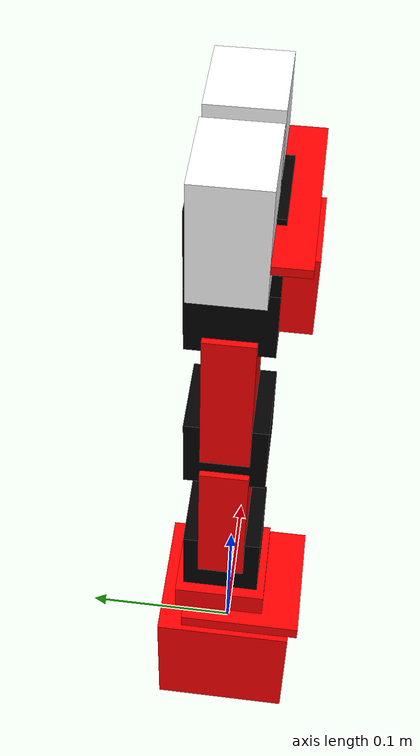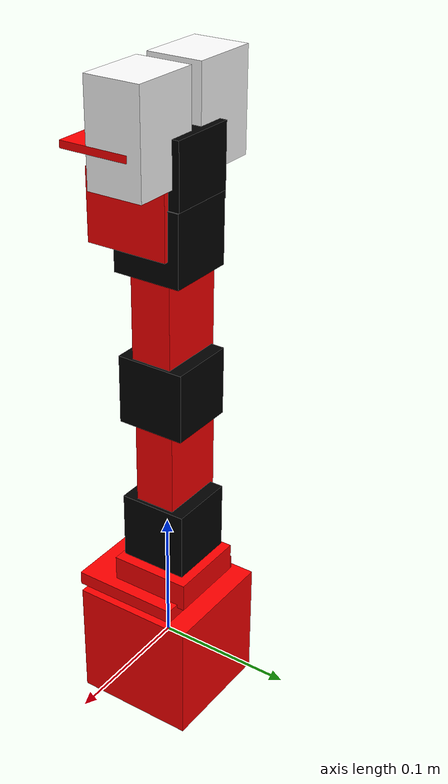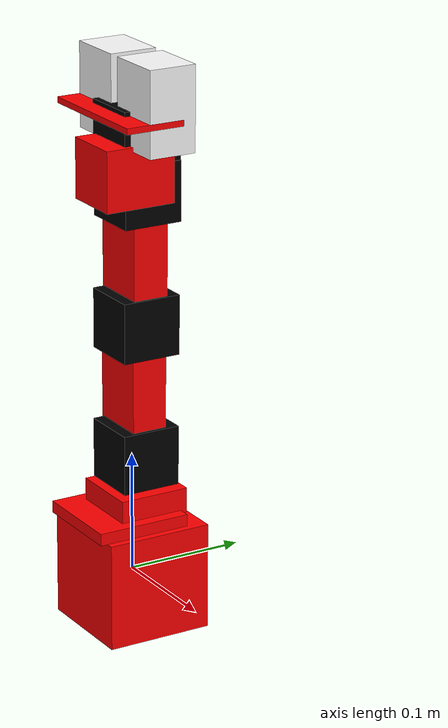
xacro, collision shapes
<?xml version="1.0"?>
<robot xmlns:xacro="http://www.ros.org/wiki/xacro" name="arm">

  <material name="red">
    <color rgba="1 0 0 1"/>
  </material>

  <!-- Material Black for Dynamixel motor -->
  <material name="black">
      <color rgba="0 0 0 1"/>
  </material>

  <link name="base_link">
    <visual>
      <geometry>
        <mesh filename="file://$(find armando_description)/meshes/base_link.stl" scale="0.001 0.001 0.001"/>
      </geometry>
      <origin rpy="0 0 0" xyz="0 0 0"/>
      <material name="red"/>
    </visual>
    <collision>
      <geometry>
        <box size="0.09 0.09 0.09"/>
      </geometry>
      <origin rpy="0 0 0" xyz="0 0 0"/>
    </collision>
    <inertial>
      <mass value="0.1"/>
      <inertia ixx="1.06682889e+08" ixy="0.0" ixz="0.0" iyy="9.92165844e+07" iyz="0.0" izz="1.26939175e+08"/>
    </inertial>
  </link>

  <joint name="base_1_2" type="fixed">
    <parent link="base_link"/>
    <child link="base_turn"/>
    <origin xyz="-0.0011 -0.011 0.05"/>
  </joint>

  <link name="base_turn">
    <visual>
      <geometry>
        <mesh filename="file://$(find armando_description)/meshes/base_turn.stl" scale="0.001 0.001 0.001"/>
      </geometry>
      <origin rpy="0 0 0" xyz="0 0 0"/>
      <material name="red"/>
    </visual>
    <collision>
      <geometry>
          <box size="0.08 0.08 0.01"/>
        </geometry>
      <origin rpy="0 0 0" xyz="0 0 0"/>
    </collision>
    <inertial>
      <mass value="0.1"/>
      <inertia ixx="1.35223008e+07" ixy="0.0" ixz="0.0" iyy="8.13814925e+06" iyz="0.0" izz="2.14903814e+07"/>
    </inertial>
  </link>

  <joint name="j0" type="revolute">
    <parent link="base_turn"/>
    <child link="base_turn_rot"/>
    <origin xyz="-0.0 0.0155 0.013" rpy = "0 0 -1.57"/>
    <axis xyz="0 0 1" />
    <limit effort="300" velocity="0.1" lower="-2.57" upper="2.57"/>
  </joint>

  <link name="base_turn_rot">
    <visual>
      <geometry>
        <mesh filename="file://$(find armando_description)/meshes/base_turn_table_rot.stl" scale="0.001 0.001 0.001"/>
      </geometry>
      <material name="red"/>
    </visual>
    <collision>
      <geometry>
          <box size="0.06 0.06 0.021"/>
        </geometry>
      <origin rpy="0 0 0" xyz="0 0 0"/>
    </collision>

    <inertial>
      <mass value="0.1"/>
      <inertia ixx="0.001" ixy="0.0" ixz="0.0" iyy="0.001" iyz="0.0" izz="0.001"/>
    </inertial>
  </link>

  <joint name="base_turn_rot_dyn2" type="fixed">
    <parent link="base_turn_rot"/>
    <child link="dyn2"/>
    <origin xyz="0 0 0.0385" rpy="0 1.57 1.57 "/>
  </joint>

  <link name="dyn2">
    <visual>
      <geometry>
        <mesh filename="file://$(find armando_description)/meshes/dyn.stl" scale="0.01 0.01 0.01"/>
      </geometry>
      <origin rpy="0 0 0" xyz="0 0 0"/>
      <material name="black"/>
    </visual>
    <collision>
      <geometry>
          <box size="0.05 0.05 0.05"/>
        </geometry>
      <origin rpy="0 0 0" xyz="0 0 0"/>
    </collision>
     <inertial>
      <mass value="0.1"/>
      <inertia ixx="6.90013881e-05" ixy="0.0" ixz="0.0" iyy="1.24554875e-04" iyz="0.0" izz="1.04295793e-04"/>
    </inertial>
  </link>

  <joint name="j1" type="revolute">
    <parent link="dyn2"/>
    <child link="dyn2_r"/>
    <origin xyz="0 0 0.0" rpy="0 0 0"/>
    <axis xyz="0 0 1" />
    <limit effort="300" velocity="0.1" lower="-3.14" upper="3.14"/>
  </joint>

  <link name="dyn2_r">

  </link>

  <joint name="dyn2_f4" type="fixed">
    <parent link="dyn2_r"/>
    <child link="f4"/>
    <origin xyz="-0.047 0.0 -0.003" rpy="0 1.57 1.57"/>
  </joint>

  <link name="f4">
    <visual>
      <geometry>
        <mesh filename="file://$(find armando_description)/meshes/f4_n_f3.stl" scale="0.001 0.001 0.001"/>
      </geometry>
      <origin rpy="0 0 0" xyz="0 0 0"/>
      <material name="red"/>
    </visual>
    <collision>
      <geometry>
          <box size="0.05 0.1 0.03"/>
        </geometry>
      <origin rpy="0 0 0" xyz="0 0 0"/>
    </collision>
     <inertial>
      <mass value="0.1"/>
      <inertia ixx="6.90013881e-05" ixy="0.0" ixz="0.0" iyy="1.24554875e-04" iyz="0.0" izz="1.04295793e-04"/>
    </inertial>
  </link>

  <joint name="d4_dyn3" type="fixed">
    <parent link="f4"/>
    <child link="dyn3"/>
    <origin xyz="-0.004 0.0645 0 " rpy="-1.57 3.14 1.57"/>
  </joint>

  <link name="dyn3">
    <visual>
      <geometry>
        <mesh filename="file://$(find armando_description)/meshes/dyn.stl" scale="0.01 0.01 0.01"/>
      </geometry>
      <origin rpy="0 0 0" xyz="0 0 0"/>
      <material name="black"/>
    </visual>
    <collision>
      <geometry>
          <box size="0.05 0.05 0.05"/>
        </geometry>
      <origin rpy="0 0 0" xyz="0 0 0"/>
    </collision>
     <inertial>
      <mass value="0.1"/>
      <inertia ixx="6.90013881e-05" ixy="0.0" ixz="0.0" iyy="1.24554875e-04" iyz="0.0" izz="1.04295793e-04"/>
    </inertial>
  </link>

  <joint name="j2" type="revolute">
    <parent link="dyn3"/>
    <child link="dyn3_r"/>
    <origin xyz="0 0 0.0" rpy="0 0 0"/>
    <axis xyz="0 0 1" />
    <limit effort="300" velocity="0.1" lower="-3.14" upper="3.14"/>
  </joint>

 <link name="dyn3_r">

  </link>

  <joint name="dyn3_f5" type="fixed">
    <parent link="dyn3_r"/>
    <child link="f5"/>
    <origin xyz="-0.046 -0.0 -0.002" rpy="1.57 1.57 3.1415 "/>
  </joint>

  <link name="f5">
    <visual>
      <geometry>
        <mesh filename="file://$(find armando_description)/meshes/f4_n_f3.stl" scale="0.001 0.001 0.001"/>
      </geometry>
      <origin rpy="0 0 0" xyz="0 0 0"/>
      <material name="red"/>
    </visual>
    <collision>
      <geometry>
          <box size="0.05 0.1 0.03"/>
        </geometry>
      <origin rpy="0 0 0" xyz="0 0 0"/>
    </collision>

    <inertial>
      <mass value="0.1"/>
  <inertia ixx="0.001" ixy="0.0" ixz="0.0" iyy="0.001" iyz="0.0" izz="0.001"/>    </inertial>
  </link>

  <joint name="f5_dyn4" type="fixed">
    <parent link="f5"/>
    <child link="dyn4"/>
    <origin xyz="-0.004 0.065 -0.0" rpy="-1.57 3.1415 1.57 "/>
  </joint>

  <link name="dyn4">
    <visual>
      <geometry>
        <mesh filename="file://$(find armando_description)/meshes/dyn.stl" scale="0.01 0.01 0.01"/>
      </geometry>
      <origin rpy="0 0 0" xyz="0 0 0"/>
      <material name="black"/>
    </visual>
    <collision>
      <geometry>
          <box size="0.05 0.05 0.05"/>
        </geometry>
      <origin rpy="0 0 0" xyz="0 0 0"/>
    </collision>

    <inertial>
      <mass value="0.1"/>
      <inertia ixx="6.90013881e-05" ixy="0.0" ixz="0.0" iyy="1.24554875e-04" iyz="0.0" izz="1.04295793e-04"/>
    </inertial>
  </link>

  <joint name="j3" type="revolute">
    <parent link="dyn4"/>
    <child link="dyn4_r"/>
    <origin xyz="0 0 0.0" rpy="0 0 0"/>
    <axis xyz="0 0 1" />
    <limit effort="300" velocity="0.1" lower="-3.14" upper="3.14"/>
  </joint>

  <link name="dyn4_r">

  </link>

  <joint name="f5_wrist" type="fixed">
    <parent link="dyn4_r"/>
    <child link="wrist"/>
    <origin xyz="-0.017 -0.013 0.003" rpy="1.57 1.57 -1.57"/>
  </joint>

  <link name="wrist">
    <visual>
      <geometry>
        <mesh filename="file://$(find armando_description)/meshes/wrist.stl" scale="0.001 0.001 0.001"/>
      </geometry>
      <origin rpy="0 0 0" xyz="0 0 0"/>
      <material name="red"/>
    </visual>
    <collision>
      <geometry>
        <box size="0.05 0.06 0.05"/>
      </geometry>
      <origin rpy="0 0 0" xyz="0 0 0"/>
    </collision>

     <inertial>
      <mass value="0.1"/>
      <inertia ixx="6.90013881e-05" ixy="0.0" ixz="0.0" iyy="1.24554875e-04" iyz="0.0" izz="1.04295793e-04"/>
    </inertial>
  </link>

  <joint name="wrist_dyn5" type="fixed">
    <parent link="wrist"/>
    <child link="dyn5"/>
    <origin xyz="0.0038 -0.013 0.0275" rpy="0 0 1.57"/>
  </joint>

    <link name="dyn5">
    <visual>
      <geometry>
        <mesh filename="file://$(find armando_description)/meshes/dyn.stl" scale="0.01 0.01 0.01"/>
      </geometry>
      <origin rpy="0 0 0" xyz="0 0 0"/>
      <material name="black"/>
    </visual>
    <collision>
      <geometry>
          <box size="0.05 0.05 0.05"/>
        </geometry>
      <origin rpy="0 0 0" xyz="0 0 0"/>
    </collision>

    <inertial>
      <mass value="0.1"/>
      <inertia ixx="6.90013881e-05" ixy="0.0" ixz="0.0" iyy="1.24554875e-04" iyz="0.0" izz="1.04295793e-04"/>
    </inertial>
  </link>

  <joint name="dyn5_dyn5_r" type="fixed">
    <parent link="dyn5"/>
    <child link="dyn5_r"/>
    <origin xyz="0 0 0.0" rpy="0 0 0"/>
    <axis xyz="0 0 1" />
    <limit effort="300" velocity="0.1" lower="-3.14" upper="3.14"/>
  </joint>

  <link name="dyn5_r">

  </link>

  <joint name="wrist_rotate_dyn5" type="fixed">
    <parent link="dyn5_r"/>
    <child link="crawer_base"/>
    <origin xyz="0.015 0 0.019" rpy="0 0 1.57"/>
  </joint>

  <link name="crawer_base">
    <visual>
      <geometry>
        <mesh filename="file://$(find armando_description)/meshes/the_crawer_base.stl" scale="0.001 0.001 0.001"/>
      </geometry>
      <origin rpy="0 0 0" xyz="0 0 0"/>
      <material name="red"/>
    </visual>
    <collision>
      <geometry>
          <box size="0.11 0.05 0.005"/>
        </geometry>
      <origin rpy="0 0 0" xyz="0 0 0"/>
    </collision>

    <inertial>
      <mass value="0.1"/>
      <inertia ixx="6.90013881e-05" ixy="0.0" ixz="0.0" iyy="1.24554875e-04" iyz="0.0" izz="1.04295793e-04"/>
    </inertial>
  </link>

  <joint name="crawer_base_crawer_left" type="fixed">
    <parent link="crawer_base"/>
    <child link="crawer_left"/>
    <origin xyz="-0.03 0.015 0.01" rpy="0 -1.57 0"/>
  </joint>

  <link name="crawer_left">
    <visual>
      <geometry>
        <mesh filename="file://$(find armando_description)/meshes/the_crawer.stl" scale="0.001 0.001 0.001"/>
      </geometry>
      <origin rpy="0 0 0" xyz="0 0 0"/>
      <material name="white">
        <color rgba="1 1 1 1"/>
      </material>
    </visual>
    <collision>
      <geometry>
          <box size="0.07 0.04 0.05"/>
        </geometry>
      <origin rpy="0 0 0" xyz="0 0 0"/>
    </collision>

    <inertial>
      <mass value="0.1"/>
      <inertia ixx="6.90013881e-05" ixy="0.0" ixz="0.0" iyy="1.24554875e-04" iyz="0.0" izz="1.04295793e-04"/>
    </inertial>
  </link>

  <joint name="crawer_base_crawer_right" type="fixed">
    <parent link="crawer_base"/>
    <child link="crawer_right"/>
    <origin xyz="0.03 0.015 0.01" rpy="3.1415 -1.57 0"/>
  </joint>

  <link name="crawer_right">
    <visual>
      <geometry>
        <mesh filename="file://$(find armando_description)/meshes/the_crawer.stl" scale="0.001 0.001 0.001"/>
      </geometry>
      <origin rpy="0 0 0" xyz="0 0 0"/>
      <material name="white">
        <color rgba="1 1 1 1"/>
      </material>
    </visual>
    <collision>
      <geometry>
          <box size="0.07 0.04 0.05"/>
        </geometry>
      <origin rpy="0 0 0" xyz="0 0 0"/>
    </collision>

    <inertial>
      <mass value="0.1"/>
      <inertia ixx="6.90013881e-05" ixy="0.0" ixz="0.0" iyy="1.24554875e-04" iyz="0.0" izz="1.04295793e-04"/>
    </inertial>
  </link>

  <!-- camera link and camera joint -->
  <!--origin xyz="0.5 -0.3 0.6" rpy="0.0 0.5 -3.66"/-->
  <joint name="camera_joint" type="fixed">
    <parent link="base_link"/>
    <child link="camera_link"/>
    <origin xyz="0 0 0" rpy="0 0 -1.57"/>
  </joint>

  <material name="grey">
    <color rgba="0.5 0.5 0.5 1"/>
  </material>

  <link name="camera_link">
    <visual>
        <geometry>
          <box size="0.01 0.03 0.03"/>
        </geometry>
        <material name="grey"/>
    </visual>
  </link>

<!--   Controller Configuration Plugin   -->
  <gazebo>
    <plugin filename="ign_ros2_control-system" name="ign_ros2_control::IgnitionROS2ControlPlugin">
     <parameters>$(find armando_gazebo)/config/armando_control.yaml</parameters>
      <controller_manager_prefix_node_name>controller_manager</controller_manager_prefix_node_name>
   </plugin>
  </gazebo>

<!--   Hardware Interface macro include   -->
  <xacro:include filename="$(find armando_description)/urdf/armando_hardware_interface.xacro"/>

  <ros2_control name="HardwareInterface_Ignition" type="system">

<!--     Hardware interface is Gazebo Fortress   -->
  <hardware>
    <plugin>ign_ros2_control/IgnitionSystem</plugin>
  </hardware>

<!--     Hardware Interface macro call   -->
  <xacro:position_joint_interface joint_name="j0" initial_pos="0.0"/>
  <xacro:position_joint_interface joint_name="j1" initial_pos="0.0"/>
  <xacro:position_joint_interface joint_name="j2" initial_pos="0.0"/>
  <xacro:position_joint_interface joint_name="j3" initial_pos="0.0"/>

</ros2_control>

<!--   Sensors macro include   -->
 <gazebo>
 <plugin filename="gz-sim-sensors-system" name="gz::sim::systems::Sensors">
  <render_engine>ogre2</render_engine>
  </plugin>
  </gazebo>

  <xacro:include filename="$(find armando_description)/urdf/armando_camera.xacro"/>
  <xacro:armando_camera/>

</robot>
